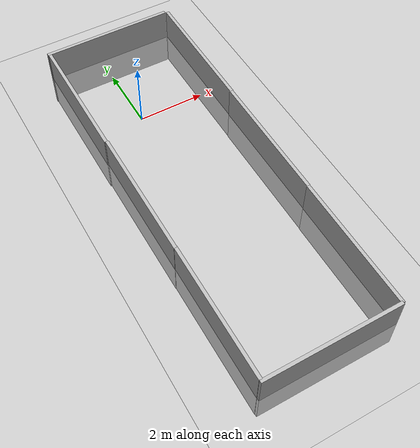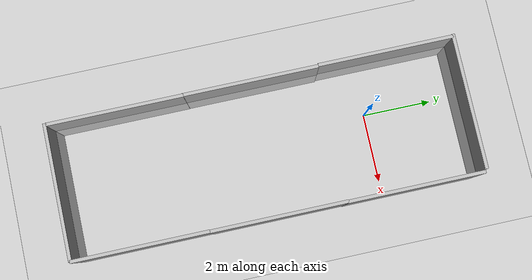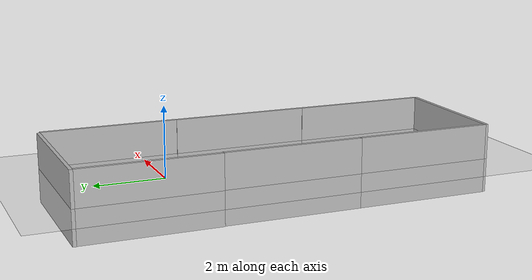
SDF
<sdf version="1.6">
 <world name="default">
  <light name="sun" type="directional">
   <pose>0 0 10 0 -0 0</pose>
   <diffuse>0.8 0.8 0.8 1</diffuse>
   <specular>0.2 0.2 0.2 1</specular>
   <attenuation>
    <range>1000</range>
    <constant>0.9</constant>
    <linear>0.01</linear>
    <quadratic>0.001</quadratic>
   </attenuation>
   <direction>-0.5 0.1 -0.9</direction>
  </light>
  <model name="ground_plane">
   <static>1</static>
   <link name="link">
    <collision name="collision">
     <geometry><plane><normal>0 0 1</normal><size>100 100</size></plane></geometry>
     <surface><friction><ode><mu>100</mu><mu2>50</mu2></ode></friction></surface>
    </collision>
    <visual name="visual">
     <cast_shadows>0</cast_shadows>
     <geometry><plane><normal>0 0 1</normal><size>100 100</size></plane></geometry>
     <material>
      <script><uri>file://media/materials/scripts/gazebo.material</uri><name>Gazebo/Grey</name></script>
     </material>
    </visual>
   </link>
  </model>
  <gravity>0 0 -9.8</gravity>
  <magnetic_field>6e-06 2.3e-05 -4.2e-05</magnetic_field>
  <atmosphere type="adiabatic"/>
  <physics name="default_physics" default="0" type="ode">
   <max_step_size>0.001</max_step_size>
   <real_time_factor>1</real_time_factor>
   <real_time_update_rate>1000</real_time_update_rate>
  </physics>
  <scene><ambient>0.4 0.4 0.4 1</ambient><background>0.7 0.7 0.7 1</background><shadows>1</shadows></scene>
  <spherical_coordinates>
   <surface_model>EARTH_WGS84</surface_model>
   <latitude_deg>0</latitude_deg>
   <longitude_deg>0</longitude_deg>
   <elevation>0</elevation>
   <heading_deg>0</heading_deg>
  </spherical_coordinates>
  <model name="wall4">
   <static>1</static>
   <link name="wall1">
    <collision name="collision"><geometry><box><size>4 0.1 2</size></box></geometry></collision>
    <visual name="visual"><geometry><box><size>4 0.1 2</size></box></geometry></visual>
   </link>
   <pose>0.349749 2.90662 0 0 -0 0</pose>
  </model>
  <model name="wall4_0">
   <static>1</static>
   <link name="wall1">
    <pose>0 0 0 0 -0 1.57</pose>
    <collision name="collision"><geometry><box><size>4 0.1 2</size></box></geometry></collision>
    <visual name="visual"><geometry><box><size>4 0.1 2</size></box></geometry></visual>
   </link>
   <pose>2.41778 0.86226 0 0 -0 0</pose>
  </model>
  <model name="wall4_1">
   <static>1</static>
   <link name="wall1">
    <pose>0 0 0 0 -0 1.57</pose>
    <collision name="collision"><geometry><box><size>4 0.1 2</size></box></geometry></collision>
    <visual name="visual"><geometry><box><size>4 0.1 2</size></box></geometry></visual>
   </link>
   <pose>2.40484 -3.10949 0 0 -0 0</pose>
  </model>
  <model name="wall4_2">
   <static>1</static>
   <link name="wall1">
    <pose>0 0 0 0 -0 1.57</pose>
    <collision name="collision"><geometry><box><size>4 0.1 2</size></box></geometry></collision>
    <visual name="visual"><geometry><box><size>4 0.1 2</size></box></geometry></visual>
   </link>
   <pose>2.39218 -7.10552 0 0 -0 0</pose>
  </model>
  <model name="wall4_3">
   <static>1</static>
   <link name="wall1">
    <pose>0 0 0 0 -0 1.57</pose>
    <collision name="collision"><geometry><box><size>4 0.1 2</size></box></geometry></collision>
    <visual name="visual"><geometry><box><size>4 0.1 2</size></box></geometry></visual>
   </link>
   <pose>-1.58814 0.906779 0 0 -0 0</pose>
  </model>
  <model name="wall4_3_clone">
   <static>1</static>
   <link name="wall1">
    <pose>0 0 0 0 -0 1.57</pose>
    <collision name="collision"><geometry><box><size>4 0.1 2</size></box></geometry></collision>
    <visual name="visual"><geometry><box><size>4 0.1 2</size></box></geometry></visual>
   </link>
   <pose>-1.56416 -3.09131 0 0 -0 0</pose>
  </model>
  <model name="wall4_3_clone_0">
   <static>1</static>
   <link name="wall1">
    <pose>0 0 0 0 -0 1.57</pose>
    <collision name="collision"><geometry><box><size>4 0.1 2</size></box></geometry></collision>
    <visual name="visual"><geometry><box><size>4 0.1 2</size></box></geometry></visual>
   </link>
   <pose>-1.56001 -7.06151 0 0 -0 0</pose>
  </model>
  <model name="wall4_clone">
   <static>1</static>
   <link name="wall1">
    <collision name="collision"><geometry><box><size>4 0.1 2</size></box></geometry></collision>
    <visual name="visual"><geometry><box><size>4 0.1 2</size></box></geometry></visual>
   </link>
   <pose>0.39737 -9.09509 0 0 -0 0</pose>
  </model>
 </world>
</sdf>
